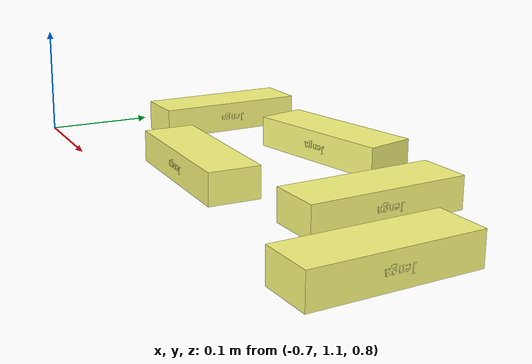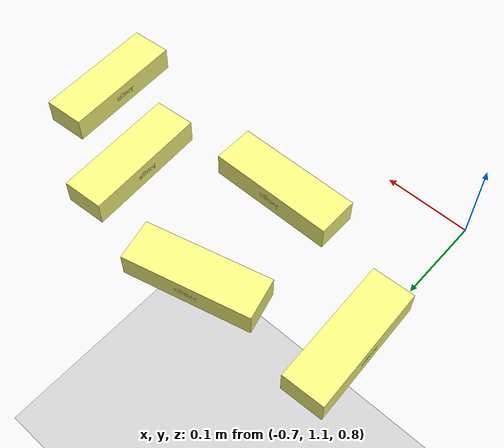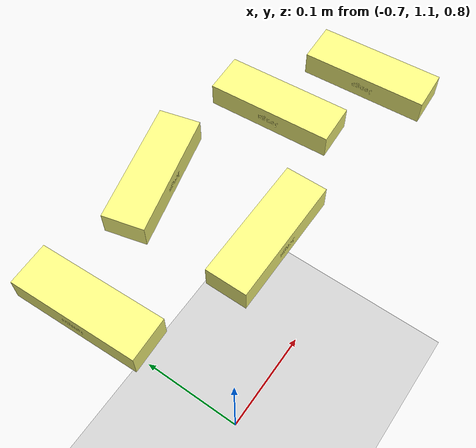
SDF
<sdf version="1.6">
 <world name="default">
  <model name="ground_plane">
   <static>1</static>
   <link name="link">
    <collision name="collision">
     <geometry><plane><normal>0 0 1</normal><size>100 100</size></plane></geometry>
     <surface>
      <contact><collide_bitmask>65535</collide_bitmask></contact>
      <friction><ode><mu>100</mu><mu2>50</mu2></ode></friction>
     </surface>
    </collision>
    <visual name="visual">
     <cast_shadows>0</cast_shadows>
     <geometry><plane><normal>0 0 1</normal><size>100 100</size></plane></geometry>
     <material>
      <script><uri>file://media/materials/scripts/gazebo.material</uri><name>Gazebo/Grey</name></script>
     </material>
    </visual>
   </link>
   <pose>0 0 -0.005 0 -0 0</pose>
  </model>
  <model name="jenga_block3">
   <static>0</static>
   <link name="link">
    <inertial>
     <mass>0.0839146</mass>
     <inertia>
      <ixx>2.45427e-05</ixx>
      <ixy>0</ixy>
      <ixz>0</ixz>
      <iyy>0.000168912</iyy>
      <iyz>0</iyz>
      <izz>0.000180461</izz>
     </inertia>
    </inertial>
    <collision name="collision">
     <geometry>
      <mesh><uri>model://jenga_block/meshes/jenga_block.stl</uri><scale>0.001 0.001 0.001</scale></mesh>
     </geometry>
     <surface><friction><ode><mu>30</mu><mu2>30</mu2></ode></friction></surface>
    </collision>
    <visual name="visual">
     <geometry>
      <mesh><uri>model://jenga_block/meshes/jenga_block.dae</uri><scale>0.001 0.001 0.001</scale></mesh>
     </geometry>
     <material><diffuse>1 1 0.5 1</diffuse></material>
    </visual>
    <velocity_decay><linear>0</linear><angular>0</angular></velocity_decay>
   </link>
   <pose>-0.51978 1.18686 0.815217 -3.14158 1e-06 -3.13743</pose>
  </model>
  <model name="jenga_block6">
   <static>0</static>
   <link name="link">
    <inertial>
     <mass>0.0839146</mass>
     <inertia>
      <ixx>2.45427e-05</ixx>
      <ixy>0</ixy>
      <ixz>0</ixz>
      <iyy>0.000168912</iyy>
      <iyz>0</iyz>
      <izz>0.000180461</izz>
     </inertia>
    </inertial>
    <collision name="collision">
     <geometry>
      <mesh><uri>model://jenga_block/meshes/jenga_block.stl</uri><scale>0.001 0.001 0.001</scale></mesh>
     </geometry>
     <surface><friction><ode><mu>30</mu><mu2>30</mu2></ode></friction></surface>
    </collision>
    <visual name="visual">
     <geometry>
      <mesh><uri>model://jenga_block/meshes/jenga_block.dae</uri><scale>0.001 0.001 0.001</scale></mesh>
     </geometry>
     <material><diffuse>1 1 0.5 1</diffuse></material>
    </visual>
    <velocity_decay><linear>0</linear><angular>0</angular></velocity_decay>
   </link>
   <pose>-0.688043 1.28576 0.815226 3.14159 -0 1.61311</pose>
  </model>
  <light name="user_point_light_0" type="point">
   <pose>1 1 3.5 0 -0 0</pose>
   <diffuse>0.7 0.7 0.7 1</diffuse>
   <specular>0.1 0.1 0.1 1</specular>
   <attenuation>
    <range>10</range>
    <constant>0.5</constant>
    <linear>0.01</linear>
    <quadratic>0.001</quadratic>
   </attenuation>
   <cast_shadows>0</cast_shadows>
   <direction>0 0 -1</direction>
  </light>
  <light name="user_point_light_1" type="point">
   <pose>-1 1 3.5 0 -0 0</pose>
   <diffuse>0.7 0.7 0.7 1</diffuse>
   <specular>0.1 0.1 0.1 1</specular>
   <attenuation>
    <range>10</range>
    <constant>0.5</constant>
    <linear>0.01</linear>
    <quadratic>0.001</quadratic>
   </attenuation>
   <cast_shadows>0</cast_shadows>
   <direction>0 0 -1</direction>
  </light>
  <light name="user_point_light_2" type="point">
   <pose>-1 -1 3.5 0 -0 0</pose>
   <diffuse>0.7 0.7 0.7 1</diffuse>
   <specular>0.1 0.1 0.1 1</specular>
   <attenuation>
    <range>10</range>
    <constant>0.5</constant>
    <linear>0.01</linear>
    <quadratic>0.001</quadratic>
   </attenuation>
   <cast_shadows>0</cast_shadows>
   <direction>0 0 -1</direction>
  </light>
  <light name="user_point_light_3" type="point">
   <pose>1 -1 3.5 0 -0 0</pose>
   <diffuse>0.7 0.7 0.7 1</diffuse>
   <specular>0.1 0.1 0.1 1</specular>
   <attenuation>
    <range>10</range>
    <constant>0.5</constant>
    <linear>0.01</linear>
    <quadratic>0.001</quadratic>
   </attenuation>
   <cast_shadows>0</cast_shadows>
   <direction>0 0 -1</direction>
  </light>
  <gravity>0 0 -9.8</gravity>
  <magnetic_field>6e-06 2.3e-05 -4.2e-05</magnetic_field>
  <atmosphere type="adiabatic"/>
  <physics name="default_physics" default="0" type="ode">
   <max_step_size>0.001</max_step_size>
   <real_time_factor>1</real_time_factor>
   <real_time_update_rate>1000</real_time_update_rate>
  </physics>
  <scene><ambient>0.4 0.4 0.4 1</ambient><background>0.7 0.7 0.7 1</background><shadows>1</shadows></scene>
  <audio><device>default</device></audio>
  <spherical_coordinates>
   <surface_model>EARTH_WGS84</surface_model>
   <latitude_deg>0</latitude_deg>
   <longitude_deg>0</longitude_deg>
   <elevation>0</elevation>
   <heading_deg>0</heading_deg>
  </spherical_coordinates>
  <model name="jenga_block6_clone">
   <static>0</static>
   <link name="link">
    <inertial>
     <mass>0.0839146</mass>
     <inertia>
      <ixx>2.45427e-05</ixx>
      <ixy>0</ixy>
      <ixz>0</ixz>
      <iyy>0.000168912</iyy>
      <iyz>0</iyz>
      <izz>0.000180461</izz>
     </inertia>
    </inertial>
    <collision name="collision">
     <geometry>
      <mesh><uri>model://jenga_block/meshes/jenga_block.stl</uri><scale>0.001 0.001 0.001</scale></mesh>
     </geometry>
     <surface><friction><ode><mu>30</mu><mu2>30</mu2></ode></friction></surface>
    </collision>
    <visual name="visual">
     <geometry>
      <mesh><uri>model://jenga_block/meshes/jenga_block.dae</uri><scale>0.001 0.001 0.001</scale></mesh>
     </geometry>
     <material><diffuse>1 1 0.5 1</diffuse></material>
    </visual>
    <velocity_decay><linear>0</linear><angular>0</angular></velocity_decay>
   </link>
   <pose>-0.527786 1.33214 0.815226 -3.14159 -0 0.248973</pose>
  </model>
  <model name="jenga_block6_clone_0">
   <static>0</static>
   <link name="link">
    <inertial>
     <mass>0.0839146</mass>
     <inertia>
      <ixx>2.45427e-05</ixx>
      <ixy>0</ixy>
      <ixz>0</ixz>
      <iyy>0.000168912</iyy>
      <iyz>0</iyz>
      <izz>0.000180461</izz>
     </inertia>
    </inertial>
    <collision name="collision">
     <geometry>
      <mesh><uri>model://jenga_block/meshes/jenga_block.stl</uri><scale>0.001 0.001 0.001</scale></mesh>
     </geometry>
     <surface><friction><ode><mu>30</mu><mu2>30</mu2></ode></friction></surface>
    </collision>
    <visual name="visual">
     <geometry>
      <mesh><uri>model://jenga_block/meshes/jenga_block.dae</uri><scale>0.001 0.001 0.001</scale></mesh>
     </geometry>
     <material><diffuse>1 1 0.5 1</diffuse></material>
    </visual>
    <velocity_decay><linear>0</linear><angular>0</angular></velocity_decay>
   </link>
   <pose>-0.368097 1.27388 0.81522 3.14157 4.1e-05 1.63308</pose>
  </model>
  <model name="jenga_block6_clone_1">
   <static>0</static>
   <link name="link">
    <inertial>
     <mass>0.0839146</mass>
     <inertia>
      <ixx>2.45427e-05</ixx>
      <ixy>0</ixy>
      <ixz>0</ixz>
      <iyy>0.000168912</iyy>
      <iyz>0</iyz>
      <izz>0.000180461</izz>
     </inertia>
    </inertial>
    <collision name="collision">
     <geometry>
      <mesh><uri>model://jenga_block/meshes/jenga_block.stl</uri><scale>0.001 0.001 0.001</scale></mesh>
     </geometry>
     <surface><friction><ode><mu>30</mu><mu2>30</mu2></ode></friction></surface>
    </collision>
    <visual name="visual">
     <geometry>
      <mesh><uri>model://jenga_block/meshes/jenga_block.dae</uri><scale>0.001 0.001 0.001</scale></mesh>
     </geometry>
     <material><diffuse>1 1 0.5 1</diffuse></material>
    </visual>
    <velocity_decay><linear>0</linear><angular>0</angular></velocity_decay>
   </link>
   <pose>-0.263126 1.21018 0.815226 3.14159 0 1.6322</pose>
  </model>
 </world>
</sdf>
